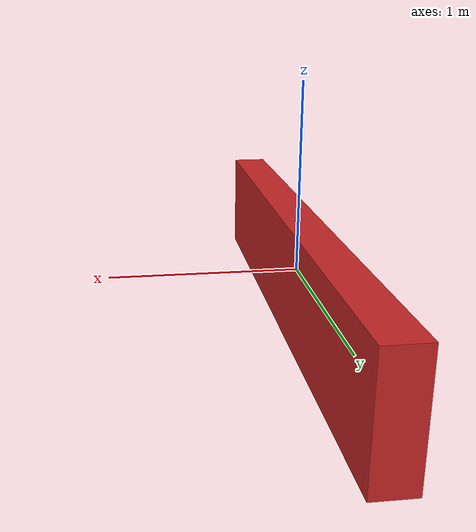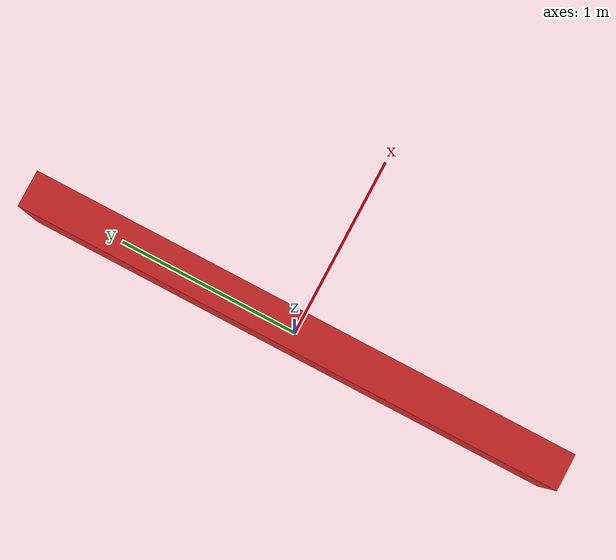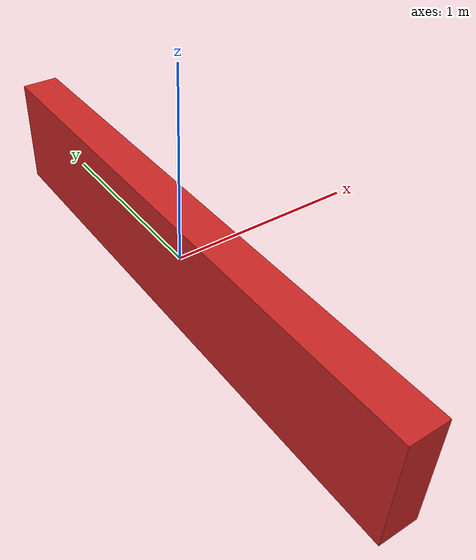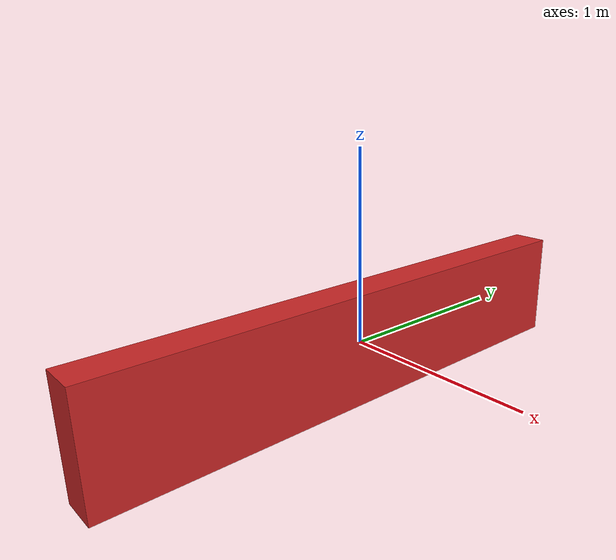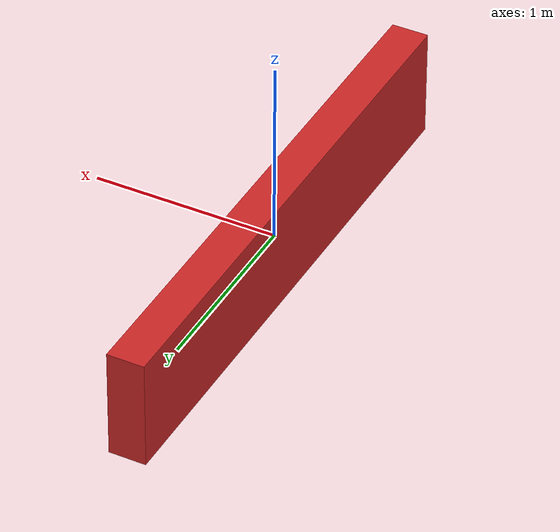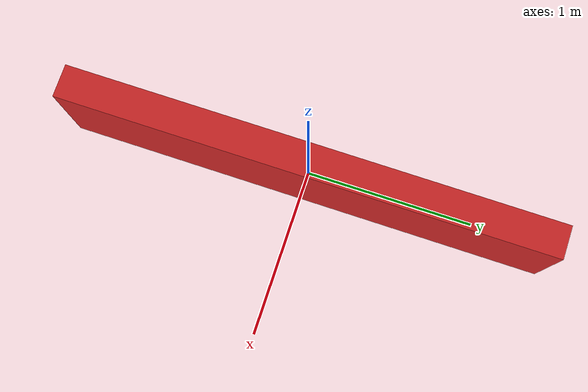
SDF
<?xml version="1.0" ?>
<sdf version="1.7">
  <model name="wall_long_obs">
    <static>true</static>
    <link name="link">
      <collision name="collision">
        <geometry>
          <box>
            <size>0.2 3.0 0.6</size>
          </box>
        </geometry>
      </collision>
      <visual name="visual">
        <geometry>
          <box>
            <size>0.2 3.0 0.6</size>
          </box>
        </geometry>
        <material>
          <script>
            <uri>file://media/materials/scripts/gazebo.material</uri>
            <name>Gazebo/Red</name>
          </script>
        </material>
      </visual>
    </link>
  </model>
</sdf>
